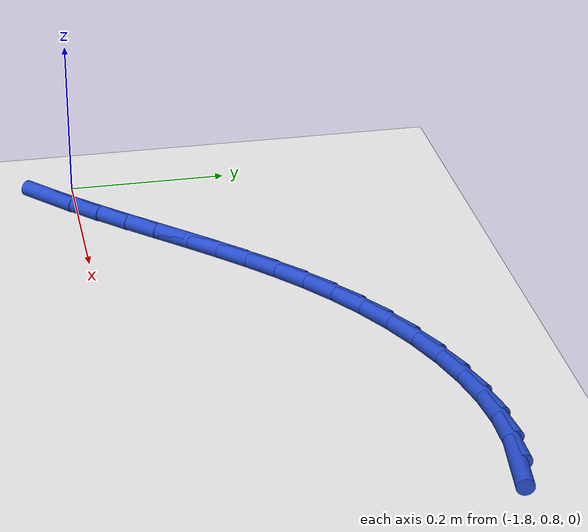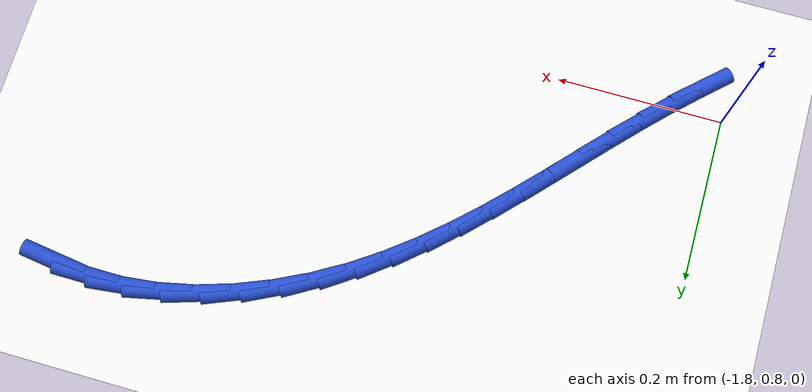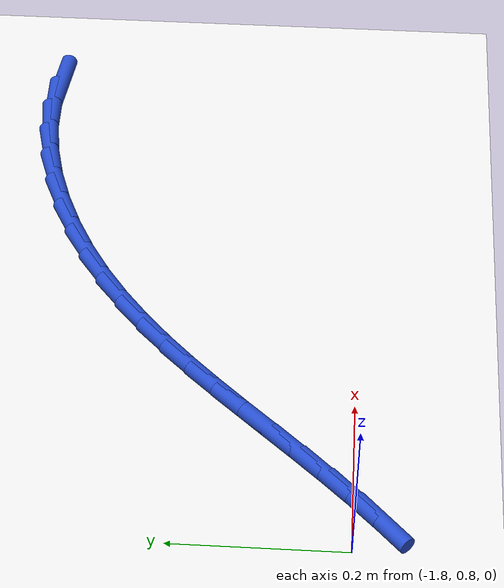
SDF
<sdf version="1.6">
 <world name="default">
  <model name="ground_plane">
   <static>1</static>
   <link name="link">
    <collision name="collision">
     <geometry><plane><normal>0 0 1</normal><size>100 100</size></plane></geometry>
     <surface><friction><ode><mu>100</mu><mu2>50</mu2></ode></friction></surface>
    </collision>
    <visual name="visual">
     <cast_shadows>0</cast_shadows>
     <geometry><plane><normal>0 0 1</normal><size>100 100</size></plane></geometry>
     <material>
      <script><uri>file://media/materials/scripts/gazebo.material</uri><name>Gazebo/WhiteGlow</name></script>
     </material>
    </visual>
   </link>
  </model>
  <model name="line">
   <link name="link_40">
    <pose>-1.0931280414214237 1.1811688871275863 0.01 0 1.57 -0.1390623356590259</pose>
    <collision name="collision">
     <geometry><cylinder><radius>0.01</radius><length>0.08</length></cylinder></geometry>
    </collision>
    <visual name="visual">
     <material>
      <script><name>Gazebo/Blue</name><uri>file://media/materials/scripts/gazebo.material</uri></script>
     </material>
     <geometry><cylinder><radius>0.01</radius><length>0.08</length></cylinder></geometry>
    </visual>
   </link>
   <link name="link_41">
    <pose>-1.1340541426265514 1.186897138990622 0.01 0 1.57 -0.0035594008422905163</pose>
    <collision name="collision">
     <geometry><cylinder><radius>0.01</radius><length>0.08</length></cylinder></geometry>
    </collision>
    <visual name="visual">
     <material>
      <script><name>Gazebo/Blue</name><uri>file://media/materials/scripts/gazebo.material</uri></script>
     </material>
     <geometry><cylinder><radius>0.01</radius><length>0.08</length></cylinder></geometry>
    </visual>
   </link>
   <link name="link_42">
    <pose>-1.176303277783253 1.1870475212329663 0.01 0 1.57 0.11429929936295045</pose>
    <collision name="collision">
     <geometry><cylinder><radius>0.01</radius><length>0.08</length></cylinder></geometry>
    </collision>
    <visual name="visual">
     <material>
      <script><name>Gazebo/Blue</name><uri>file://media/materials/scripts/gazebo.material</uri></script>
     </material>
     <geometry><cylinder><radius>0.01</radius><length>0.08</length></cylinder></geometry>
    </visual>
   </link>
   <link name="link_43">
    <pose>-1.2193026989298357 1.182111202210398 0.01 0 1.57 0.2171338606109823</pose>
    <collision name="collision">
     <geometry><cylinder><radius>0.01</radius><length>0.08</length></cylinder></geometry>
    </collision>
    <visual name="visual">
     <material>
      <script><name>Gazebo/Blue</name><uri>file://media/materials/scripts/gazebo.material</uri></script>
     </material>
     <geometry><cylinder><radius>0.01</radius><length>0.08</length></cylinder></geometry>
    </visual>
   </link>
   <link name="link_44">
    <pose>-1.26247478088094 1.1725869281188246 0.01 0 1.57 0.30817515680366264</pose>
    <collision name="collision">
     <geometry><cylinder><radius>0.01</radius><length>0.08</length></cylinder></geometry>
    </collision>
    <visual name="visual">
     <material>
      <script><name>Gazebo/Blue</name><uri>file://media/materials/scripts/gazebo.material</uri></script>
     </material>
     <geometry><cylinder><radius>0.01</radius><length>0.08</length></cylinder></geometry>
    </visual>
   </link>
   <link name="link_45">
    <pose>-1.3052418984512053 1.158973445154156 0.01 0 1.57 0.39057740820643516</pose>
    <collision name="collision">
     <geometry><cylinder><radius>0.01</radius><length>0.08</length></cylinder></geometry>
    </collision>
    <visual name="visual">
     <material>
      <script><name>Gazebo/Blue</name><uri>file://media/materials/scripts/gazebo.material</uri></script>
     </material>
     <geometry><cylinder><radius>0.01</radius><length>0.08</length></cylinder></geometry>
    </visual>
   </link>
   <link name="link_46">
    <pose>-1.347026426455272 1.1417694995122998 0.01 0 1.57 0.46729058842114163</pose>
    <collision name="collision">
     <geometry><cylinder><radius>0.01</radius><length>0.08</length></cylinder></geometry>
    </collision>
    <visual name="visual">
     <material>
      <script><name>Gazebo/Blue</name><uri>file://media/materials/scripts/gazebo.material</uri></script>
     </material>
     <geometry><cylinder><radius>0.01</radius><length>0.08</length></cylinder></geometry>
    </visual>
   </link>
   <link name="link_47">
    <pose>-1.38725073970778 1.1214738373891653 0.01 0 1.57 0.5410305204586531</pose>
    <collision name="collision">
     <geometry><cylinder><radius>0.01</radius><length>0.08</length></cylinder></geometry>
    </collision>
    <visual name="visual">
     <material>
      <script><name>Gazebo/Blue</name><uri>file://media/materials/scripts/gazebo.material</uri></script>
     </material>
     <geometry><cylinder><radius>0.01</radius><length>0.08</length></cylinder></geometry>
    </visual>
   </link>
   <link name="link_48">
    <pose>-1.4253504681780664 1.0985823282952816 0.01 0 1.57 0.6108868005704579</pose>
    <collision name="collision">
     <geometry><cylinder><radius>0.01</radius><length>0.08</length></cylinder></geometry>
    </collision>
    <visual name="visual">
     <material>
      <script><name>Gazebo/Blue</name><uri>file://media/materials/scripts/gazebo.material</uri></script>
     </material>
     <geometry><cylinder><radius>0.01</radius><length>0.08</length></cylinder></geometry>
    </visual>
   </link>
   <link name="link_49">
    <pose>-1.4611657360647023 1.073503056825669 0.01 0 1.57 0.6727331271956344</pose>
    <collision name="collision">
     <geometry><cylinder><radius>0.01</radius><length>0.08</length></cylinder></geometry>
    </collision>
    <visual name="visual">
     <material>
      <script><name>Gazebo/Blue</name><uri>file://media/materials/scripts/gazebo.material</uri></script>
     </material>
     <geometry><cylinder><radius>0.01</radius><length>0.08</length></cylinder></geometry>
    </visual>
   </link>
   <link name="link_50">
    <pose>-1.495005733812268 1.0465423089888706 0.01 0 1.57 0.7252398496523266</pose>
    <collision name="collision">
     <geometry><cylinder><radius>0.01</radius><length>0.08</length></cylinder></geometry>
    </collision>
    <visual name="visual">
     <material>
      <script><name>Gazebo/Blue</name><uri>file://media/materials/scripts/gazebo.material</uri></script>
     </material>
     <geometry><cylinder><radius>0.01</radius><length>0.08</length></cylinder></geometry>
    </visual>
   </link>
   <link name="link_51">
    <pose>-1.5272059102918196 1.018000672087283 0.01 0 1.57 0.767713819048618</pose>
    <collision name="collision">
     <geometry><cylinder><radius>0.01</radius><length>0.08</length></cylinder></geometry>
    </collision>
    <visual name="visual">
     <material>
      <script><name>Gazebo/Blue</name><uri>file://media/materials/scripts/gazebo.material</uri></script>
     </material>
     <geometry><cylinder><radius>0.01</radius><length>0.08</length></cylinder></geometry>
    </visual>
   </link>
   <link name="link_52">
    <pose>-1.5581017143744162 0.9881787334233055 0.01 0 1.57 0.7998018056155519</pose>
    <collision name="collision">
     <geometry><cylinder><radius>0.01</radius><length>0.08</length></cylinder></geometry>
    </collision>
    <visual name="visual">
     <material>
      <script><name>Gazebo/Blue</name><uri>file://media/materials/scripts/gazebo.material</uri></script>
     </material>
     <geometry><cylinder><radius>0.01</radius><length>0.08</length></cylinder></geometry>
    </visual>
   </link>
   <link name="link_53">
    <pose>-1.5880285949311141 0.9573770802993341 0.01 0 1.57 0.8213744673745932</pose>
    <collision name="collision">
     <geometry><cylinder><radius>0.01</radius><length>0.08</length></cylinder></geometry>
    </collision>
    <visual name="visual">
     <material>
      <script><name>Gazebo/Blue</name><uri>file://media/materials/scripts/gazebo.material</uri></script>
     </material>
     <geometry><cylinder><radius>0.01</radius><length>0.08</length></cylinder></geometry>
    </visual>
   </link>
   <link name="link_54">
    <pose>-1.6173220008329716 0.9258963000177679 0.01 0 1.57 0.8324254009968024</pose>
    <collision name="collision">
     <geometry><cylinder><radius>0.01</radius><length>0.08</length></cylinder></geometry>
    </collision>
    <visual name="visual">
     <material>
      <script><name>Gazebo/Blue</name><uri>file://media/materials/scripts/gazebo.material</uri></script>
     </material>
     <geometry><cylinder><radius>0.01</radius><length>0.08</length></cylinder></geometry>
    </visual>
   </link>
   <link name="link_55">
    <pose>-1.6463173809510463 0.894036979881004 0.01 0 1.57 0.8329997999224895</pose>
    <collision name="collision">
     <geometry><cylinder><radius>0.01</radius><length>0.08</length></cylinder></geometry>
    </collision>
    <visual name="visual">
     <material>
      <script><name>Gazebo/Blue</name><uri>file://media/materials/scripts/gazebo.material</uri></script>
     </material>
     <geometry><cylinder><radius>0.01</radius><length>0.08</length></cylinder></geometry>
    </visual>
   </link>
   <link name="link_56">
    <pose>-1.6753501841563954 0.8620997071914395 0.01 0 1.57 0.8231575465556834</pose>
    <collision name="collision">
     <geometry><cylinder><radius>0.01</radius><length>0.08</length></cylinder></geometry>
    </collision>
    <visual name="visual">
     <material>
      <script><name>Gazebo/Blue</name><uri>file://media/materials/scripts/gazebo.material</uri></script>
     </material>
     <geometry><cylinder><radius>0.01</radius><length>0.08</length></cylinder></geometry>
    </visual>
   </link>
   <link name="link_57">
    <pose>-1.7047558593200762 0.8303850692514729 0.01 0 1.57 0.8029709837357847</pose>
    <collision name="collision">
     <geometry><cylinder><radius>0.01</radius><length>0.08</length></cylinder></geometry>
    </collision>
    <visual name="visual">
     <material>
      <script><name>Gazebo/Blue</name><uri>file://media/materials/scripts/gazebo.material</uri></script>
     </material>
     <geometry><cylinder><radius>0.01</radius><length>0.08</length></cylinder></geometry>
    </visual>
   </link>
   <link name="link_58">
    <pose>-1.7348698553131479 0.7991936533635018 0.01 0 1.57 0.7737922068224099</pose>
    <collision name="collision">
     <geometry><cylinder><radius>0.01</radius><length>0.08</length></cylinder></geometry>
    </collision>
    <visual name="visual">
     <material>
      <script><name>Gazebo/Blue</name><uri>file://media/materials/scripts/gazebo.material</uri></script>
     </material>
     <geometry><cylinder><radius>0.01</radius><length>0.08</length></cylinder></geometry>
    </visual>
   </link>
   <link name="link_59">
    <pose>-1.7659859614970173 0.7687915568278687 0.01 0 1.57 0.7478658680084495</pose>
    <collision name="collision">
     <geometry><cylinder><radius>0.01</radius><length>0.08</length></cylinder></geometry>
    </collision>
    <visual name="visual">
     <material>
      <script><name>Gazebo/Blue</name><uri>file://media/materials/scripts/gazebo.material</uri></script>
     </material>
     <geometry><cylinder><radius>0.01</radius><length>0.08</length></cylinder></geometry>
    </visual>
   </link>
  </model>
 </world>
</sdf>
